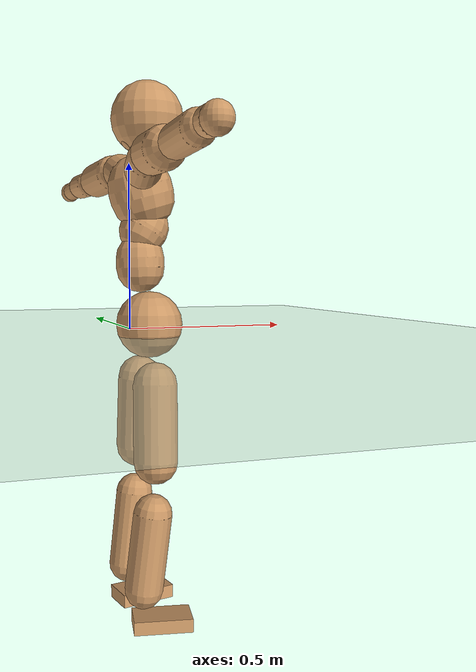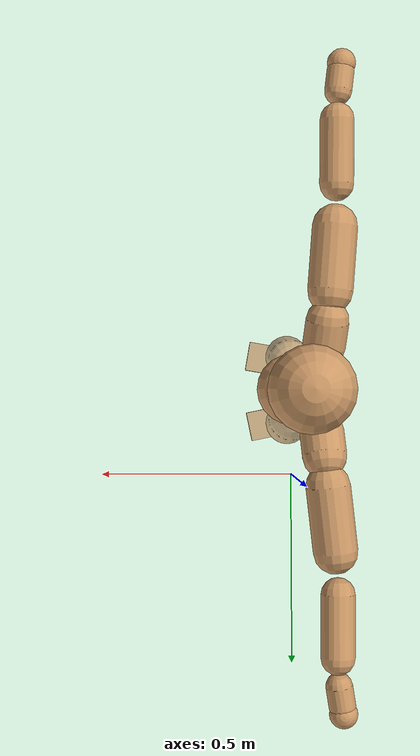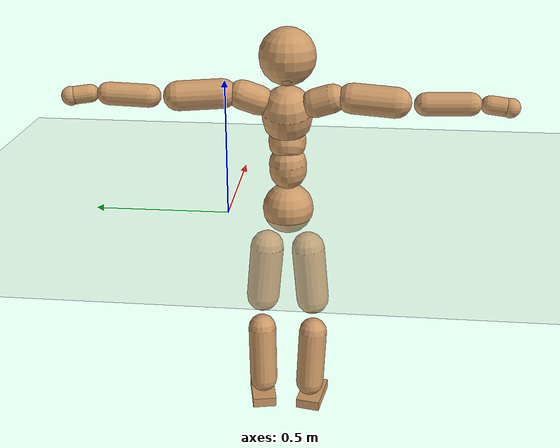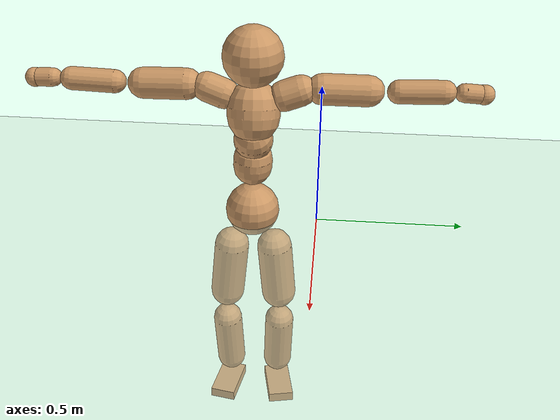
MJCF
<mujoco model="humanoid">
  <compiler coordinate="local"/>
  <default>
    <joint damping="0.0" armature="0.01" stiffness="0.0" limited="true"/>
    <geom conaffinity="1" condim="3" contype="7" margin="0.001" rgba="0.8 0.6 .4 1"/>
  </default>
  <asset>
    <texture type="skybox" builtin="gradient" rgb1=".4 .5 .6" rgb2="0 0 0" width="100" height="100"/>
    <texture builtin="flat" height="1278" mark="cross" markrgb="1 1 1" name="texgeom" random="0.01" rgb1="0.8 0.6 0.4" rgb2="0.8 0.6 0.4" type="cube" width="127"/>
    <texture builtin="checker" height="100" name="texplane" rgb1="0 0 0" rgb2="0.8 0.8 0.8" type="2d" width="100"/>
    <material name="MatPlane" reflectance="0.5" shininess="1" specular="1" texrepeat="60 60" texture="texplane"/>
    <material name="geom" texture="texgeom" texuniform="true"/>
  </asset>
  <worldbody>
    <light cutoff="100" diffuse="1 1 1" dir="-0 0 -1.3" directional="true" exponent="1" pos="0 0 1.3" specular=".1 .1 .1"/>
    <geom conaffinity="1" condim="3" name="floor" pos="0 0 0" rgba="0.8 0.9 0.8 1" size="100 100 .2" type="plane" material="MatPlane"/>
    <body name="Pelvis" pos="-0.0019 -0.2237 0.0304">
      <freejoint name="Pelvis"/>
      <geom type="sphere" contype="1" conaffinity="1" density="500" size="0.0930" pos="0.0000 0.0000 0.0000" name="Pelvis"/>
      <body name="L_Hip" pos="-0.0069 0.0719 -0.0888">
        <joint name="L_Hip_x" type="hinge" pos="0 0 0" axis="1 0 0" stiffness="800" damping="80" armature="0.02" range="-180.0000 180.0000"/>
        <joint name="L_Hip_y" type="hinge" pos="0 0 0" axis="0 1 0" stiffness="800" damping="80" armature="0.02" range="-180.0000 180.0000"/>
        <joint name="L_Hip_z" type="hinge" pos="0 0 0" axis="0 0 1" stiffness="800" damping="80" armature="0.02" range="-180.0000 180.0000"/>
        <geom type="capsule" contype="1" conaffinity="1" density="500" fromto="-0.0011 0.0057 -0.0693 -0.0043 0.0230 -0.2773" size="0.0619" name="L_Hip"/>
        <body name="L_Knee" pos="-0.0054 0.0287 -0.3466">
          <joint name="L_Knee_x" type="hinge" pos="0 0 0" axis="1 0 0" stiffness="800" damping="80" armature="0.02" range="-180.0000 180.0000"/>
          <joint name="L_Knee_y" type="hinge" pos="0 0 0" axis="0 1 0" stiffness="800" damping="80" armature="0.02" range="-180.0000 180.0000"/>
          <joint name="L_Knee_z" type="hinge" pos="0 0 0" axis="0 0 1" stiffness="800" damping="80" armature="0.02" range="-180.0000 180.0000"/>
          <geom type="capsule" contype="1" conaffinity="1" density="500" fromto="-0.0086 -0.0023 -0.0730 -0.0342 -0.0093 -0.2918" size="0.0535" name="L_Knee"/>
          <body name="L_Ankle" pos="-0.0428 -0.0116 -0.3648">
            <joint name="L_Ankle_x" type="hinge" pos="0 0 0" axis="1 0 0" stiffness="800" damping="80" armature="0.02" range="-180.0000 180.0000"/>
            <joint name="L_Ankle_y" type="hinge" pos="0 0 0" axis="0 1 0" stiffness="800" damping="80" armature="0.02" range="-180.0000 180.0000"/>
            <joint name="L_Ankle_z" type="hinge" pos="0 0 0" axis="0 0 1" stiffness="800" damping="80" armature="0.02" range="-180.0000 180.0000"/>
            <geom type="box" contype="1" conaffinity="1" density="500" pos="0.0568 0.0116 -0.0265" size="0.0819 0.0464 0.0194" quat="0.9949 0.0000 0.0000 0.1006" name="L_Ankle"/>
            <body name="L_Toe" pos="0.1136 0.0232 -0.053">
              <joint name="L_Toe_x" type="hinge" pos="0 0 0" axis="1 0 0" stiffness="500" damping="50" armature="0.02" range="-180.0000 180.0000"/>
              <joint name="L_Toe_y" type="hinge" pos="0 0 0" axis="0 1 0" stiffness="500" damping="50" armature="0.02" range="-180.0000 180.0000"/>
              <joint name="L_Toe_z" type="hinge" pos="0 0 0" axis="0 0 1" stiffness="500" damping="50" armature="0.02" range="-180.0000 180.0000"/>
              <geom type="box" contype="1" conaffinity="1" density="500" pos="0.0000 0.0000 0.0261" size="0.001 0.0023 0.001" quat="0.9942 0.0000 0.0000 0.1072" name="L_Toe"/>
            </body>
          </body>
        </body>
      </body>
      <body name="R_Hip" pos="-0.0042 -0.0694 -0.0881">
        <joint name="R_Hip_x" type="hinge" pos="0 0 0" axis="1 0 0" stiffness="800" damping="80" armature="0.02" range="-180.0000 180.0000"/>
        <joint name="R_Hip_y" type="hinge" pos="0 0 0" axis="0 1 0" stiffness="800" damping="80" armature="0.02" range="-180.0000 180.0000"/>
        <joint name="R_Hip_z" type="hinge" pos="0 0 0" axis="0 0 1" stiffness="800" damping="80" armature="0.02" range="-180.0000 180.0000"/>
        <geom type="capsule" contype="1" conaffinity="1" density="500" fromto="-0.0016 -0.0068 -0.0707 -0.0066 -0.0273 -0.2828" size="0.0612" name="R_Hip"/>
        <body name="R_Knee" pos="-0.0082 -0.0341 -0.3535">
          <joint name="R_Knee_x" type="hinge" pos="0 0 0" axis="1 0 0" stiffness="800" damping="80" armature="0.02" range="-180.0000 180.0000"/>
          <joint name="R_Knee_y" type="hinge" pos="0 0 0" axis="0 1 0" stiffness="800" damping="80" armature="0.02" range="-180.0000 180.0000"/>
          <joint name="R_Knee_z" type="hinge" pos="0 0 0" axis="0 0 1" stiffness="800" damping="80" armature="0.02" range="-180.0000 180.0000"/>
          <geom type="capsule" contype="1" conaffinity="1" density="500" fromto="-0.0083 0.0027 -0.0728 -0.0330 0.0106 -0.2914" size="0.0537" name="R_Knee"/>
          <body name="R_Ankle" pos="-0.0413 0.0133 -0.3642">
            <joint name="R_Ankle_x" type="hinge" pos="0 0 0" axis="1 0 0" stiffness="800" damping="80" armature="0.02" range="-180.0000 180.0000"/>
            <joint name="R_Ankle_y" type="hinge" pos="0 0 0" axis="0 1 0" stiffness="800" damping="80" armature="0.02" range="-180.0000 180.0000"/>
            <joint name="R_Ankle_z" type="hinge" pos="0 0 0" axis="0 0 1" stiffness="800" damping="80" armature="0.02" range="-180.0000 180.0000"/>
            <geom type="box" contype="1" conaffinity="1" density="500" pos="0.0586 -0.0104 -0.0224" size="0.0823 0.0464 0.0192" quat="0.9961 0.0000 0.0000 -0.0877" name="R_Ankle"/>
            <body name="R_Toe" pos="0.1171 -0.0208 -0.0448">
              <joint name="R_Toe_x" type="hinge" pos="0 0 0" axis="1 0 0" stiffness="500" damping="50" armature="0.02" range="-180.0000 180.0000"/>
              <joint name="R_Toe_y" type="hinge" pos="0 0 0" axis="0 1 0" stiffness="500" damping="50" armature="0.02" range="-180.0000 180.0000"/>
              <joint name="R_Toe_z" type="hinge" pos="0 0 0" axis="0 0 1" stiffness="500" damping="50" armature="0.02" range="-180.0000 180.0000"/>
              <geom type="box" contype="1" conaffinity="1" density="500" pos="0.0000 0.0000 0.0248" size="0.0009 0.0023 0.0011" quat="0.9969 0.0000 0.0000 -0.0781" name="R_Toe"/>
            </body>
          </body>
        </body>
      </body>
      <body name="Torso" pos="-0.0241 -0.0032 0.1036">
        <joint name="Torso_x" type="hinge" pos="0 0 0" axis="1 0 0" stiffness="1000" damping="100" armature="0.02" range="-180.0000 180.0000"/>
        <joint name="Torso_y" type="hinge" pos="0 0 0" axis="0 1 0" stiffness="1000" damping="100" armature="0.02" range="-180.0000 180.0000"/>
        <joint name="Torso_z" type="hinge" pos="0 0 0" axis="0 0 1" stiffness="1000" damping="100" armature="0.02" range="-180.0000 180.0000"/>
        <geom type="capsule" contype="1" conaffinity="1" density="500" fromto="-0.0021 0.0028 0.0810 -0.0014 0.0018 0.0540" size="0.066867" name="Torso"/>
        <body name="Spine" pos="-0.0035 0.0046 0.135">
          <joint name="Spine_x" type="hinge" pos="0 0 0" axis="1 0 0" stiffness="1000" damping="100" armature="0.02" range="-180.0000 180.0000"/>
          <joint name="Spine_y" type="hinge" pos="0 0 0" axis="0 1 0" stiffness="1000" damping="100" armature="0.02" range="-180.0000 180.0000"/>
          <joint name="Spine_z" type="hinge" pos="0 0 0" axis="0 0 1" stiffness="1000" damping="100" armature="0.02" range="-180.0000 180.0000"/>
          <geom type="capsule" contype="1" conaffinity="1" density="500" fromto="0.0169 0.0013 0.0301 0.0113 0.0009 0.0201" size="0.066402" name="Spine"/>
          <body name="Chest" pos="0.0282 0.0022 0.0502">
            <joint name="Chest_x" type="hinge" pos="0 0 0" axis="1 0 0" stiffness="1000" damping="100" armature="0.02" range="-180.0000 180.0000"/>
            <joint name="Chest_y" type="hinge" pos="0 0 0" axis="0 1 0" stiffness="1000" damping="100" armature="0.02" range="-180.0000 180.0000"/>
            <joint name="Chest_z" type="hinge" pos="0 0 0" axis="0 0 1" stiffness="1000" damping="100" armature="0.02" range="-180.0000 180.0000"/>
            <geom type="capsule" contype="1" conaffinity="1" density="500" fromto="-0.0256 -0.0007 0.0894 -0.0171 -0.0004 0.0596" size="0.088257" name="Chest"/>
            <body name="Neck" pos="-0.0515 -0.002 0.2107">
              <joint name="Neck_x" type="hinge" pos="0 0 0" axis="1 0 0" stiffness="500" damping="50" armature="0.02" range="-180.0000 180.0000"/>
              <joint name="Neck_y" type="hinge" pos="0 0 0" axis="0 1 0" stiffness="500" damping="50" armature="0.02" range="-180.0000 180.0000"/>
              <joint name="Neck_z" type="hinge" pos="0 0 0" axis="0 0 1" stiffness="500" damping="50" armature="0.02" range="-180.0000 180.0000"/>
              <geom type="capsule" contype="1" conaffinity="1" density="500" fromto="0.0096 0.0005 0.0124 0.0383 0.0020 0.0496" size="0.038781" name="Neck"/>
              <body name="Head" pos="0.0479 0.0026 0.0619">
                <joint name="Head_x" type="hinge" pos="0 0 0" axis="1 0 0" stiffness="500" damping="50" armature="0.02" range="-180.0000 180.0000"/>
                <joint name="Head_y" type="hinge" pos="0 0 0" axis="0 1 0" stiffness="500" damping="50" armature="0.02" range="-180.0000 180.0000"/>
                <joint name="Head_z" type="hinge" pos="0 0 0" axis="0 0 1" stiffness="500" damping="50" armature="0.02" range="-180.0000 180.0000"/>
                <geom type="sphere" contype="1" conaffinity="1" density="500" size="0.0994" pos="0.0000 0.0000 0.0000" name="Head"/>
              </body>
            </body>
            <body name="L_Thorax" pos="-0.0356 0.0783 0.1196">
              <joint name="L_Thorax_x" type="hinge" pos="0 0 0" axis="1 0 0" stiffness="500" damping="50" armature="0.02" range="-180.0000 180.0000"/>
              <joint name="L_Thorax_y" type="hinge" pos="0 0 0" axis="0 1 0" stiffness="500" damping="50" armature="0.02" range="-180.0000 180.0000"/>
              <joint name="L_Thorax_z" type="hinge" pos="0 0 0" axis="0 0 1" stiffness="500" damping="50" armature="0.02" range="-180.0000 180.0000"/>
              <geom type="capsule" contype="1" conaffinity="1" density="500" fromto="-0.0015 0.0183 0.0066 -0.0061 0.0734 0.0262" size="0.0513" name="L_Thorax"/>
              <body name="L_Shoulder" pos="-0.0077 0.0917 0.0328">
                <joint name="L_Shoulder_x" type="hinge" pos="0 0 0" axis="1 0 0" stiffness="500" damping="50" armature="0.02" range="-720.0000 720.0000"/>
                <joint name="L_Shoulder_y" type="hinge" pos="0 0 0" axis="0 1 0" stiffness="500" damping="50" armature="0.02" range="-720.0000 720.0000"/>
                <joint name="L_Shoulder_z" type="hinge" pos="0 0 0" axis="0 0 1" stiffness="500" damping="50" armature="0.02" range="-720.0000 720.0000"/>
                <geom type="capsule" contype="1" conaffinity="1" density="500" fromto="-0.0057 0.0501 -0.0025 -0.0229 0.2005 -0.0102" size="0.0515" name="L_Shoulder"/>
                <body name="L_Elbow" pos="-0.0286 0.2506 -0.0127">
                  <joint name="L_Elbow_x" type="hinge" pos="0 0 0" axis="1 0 0" stiffness="500" damping="50" armature="0.02" range="-720.0000 720.0000"/>
                  <joint name="L_Elbow_y" type="hinge" pos="0 0 0" axis="0 1 0" stiffness="500" damping="50" armature="0.02" range="-720.0000 720.0000"/>
                  <joint name="L_Elbow_z" type="hinge" pos="0 0 0" axis="0 0 1" stiffness="500" damping="50" armature="0.02" range="-720.0000 720.0000"/>
                  <geom type="capsule" contype="1" conaffinity="1" density="500" fromto="0.0003 0.0479 0.0016 0.0011 0.1914 0.0063" size="0.0397" name="L_Elbow"/>
                  <body name="L_Wrist" pos="0.0014 0.2393 0.0078">
                    <joint name="L_Wrist_x" type="hinge" pos="0 0 0" axis="1 0 0" stiffness="300" damping="30" armature="0.02" range="-180.0000 180.0000"/>
                    <joint name="L_Wrist_y" type="hinge" pos="0 0 0" axis="0 1 0" stiffness="300" damping="30" armature="0.02" range="-180.0000 180.0000"/>
                    <joint name="L_Wrist_z" type="hinge" pos="0 0 0" axis="0 0 1" stiffness="300" damping="30" armature="0.02" range="-180.0000 180.0000"/>
                    <geom type="capsule" contype="1" conaffinity="1" density="500" fromto="-0.0027 0.0164 -0.0020 -0.0107 0.0658 -0.0080" size="0.0311" name="L_Wrist"/>
                    <body name="L_Hand" pos="-0.0134 0.0822 -0.01">
                      <joint name="L_Hand_x" type="hinge" pos="0 0 0" axis="1 0 0" stiffness="300" damping="30" armature="0.02" range="-180.0000 180.0000"/>
                      <joint name="L_Hand_y" type="hinge" pos="0 0 0" axis="0 1 0" stiffness="300" damping="30" armature="0.02" range="-180.0000 180.0000"/>
                      <joint name="L_Hand_z" type="hinge" pos="0 0 0" axis="0 0 1" stiffness="300" damping="30" armature="0.02" range="-180.0000 180.0000"/>
                      <geom type="sphere" contype="1" conaffinity="1" density="500" size="0.0332" pos="0.0000 0.0000 0.0000" name="L_Hand"/>
                    </body>
                  </body>
                </body>
              </body>
            </body>
            <body name="R_Thorax" pos="-0.0408 -0.0796 0.1167">
              <joint name="R_Thorax_x" type="hinge" pos="0 0 0" axis="1 0 0" stiffness="500" damping="50" armature="0.02" range="-180.0000 180.0000"/>
              <joint name="R_Thorax_y" type="hinge" pos="0 0 0" axis="0 1 0" stiffness="500" damping="50" armature="0.02" range="-180.0000 180.0000"/>
              <joint name="R_Thorax_z" type="hinge" pos="0 0 0" axis="0 0 1" stiffness="500" damping="50" armature="0.02" range="-180.0000 180.0000"/>
              <geom type="capsule" contype="1" conaffinity="1" density="500" fromto="-0.0022 -0.0191 0.0065 -0.0088 -0.0764 0.0262" size="0.0499" name="R_Thorax"/>
              <body name="R_Shoulder" pos="-0.011 -0.0955 0.0327">
                <joint name="R_Shoulder_x" type="hinge" pos="0 0 0" axis="1 0 0" stiffness="500" damping="50" armature="0.02" range="-720.0000 720.0000"/>
                <joint name="R_Shoulder_y" type="hinge" pos="0 0 0" axis="0 1 0" stiffness="500" damping="50" armature="0.02" range="-720.0000 720.0000"/>
                <joint name="R_Shoulder_z" type="hinge" pos="0 0 0" axis="0 0 1" stiffness="500" damping="50" armature="0.02" range="-720.0000 720.0000"/>
                <geom type="capsule" contype="1" conaffinity="1" density="500" fromto="-0.0040 -0.0491 -0.0025 -0.0159 -0.1964 -0.0099" size="0.0524" name="R_Shoulder"/>
                <body name="R_Elbow" pos="-0.0199 -0.2454 -0.0124">
                  <joint name="R_Elbow_x" type="hinge" pos="0 0 0" axis="1 0 0" stiffness="500" damping="50" armature="0.02" range="-720.0000 720.0000"/>
                  <joint name="R_Elbow_y" type="hinge" pos="0 0 0" axis="0 1 0" stiffness="500" damping="50" armature="0.02" range="-720.0000 720.0000"/>
                  <joint name="R_Elbow_z" type="hinge" pos="0 0 0" axis="0 0 1" stiffness="500" damping="50" armature="0.02" range="-720.0000 720.0000"/>
                  <geom type="capsule" contype="1" conaffinity="1" density="500" fromto="-0.0004 -0.0486 0.0015 -0.0016 -0.1943 0.0061" size="0.0394" name="R_Elbow"/>
                  <body name="R_Wrist" pos="-0.002 -0.2429 0.0076">
                    <joint name="R_Wrist_x" type="hinge" pos="0 0 0" axis="1 0 0" stiffness="300" damping="30" armature="0.02" range="-180.0000 180.0000"/>
                    <joint name="R_Wrist_y" type="hinge" pos="0 0 0" axis="0 1 0" stiffness="300" damping="30" armature="0.02" range="-180.0000 180.0000"/>
                    <joint name="R_Wrist_z" type="hinge" pos="0 0 0" axis="0 0 1" stiffness="300" damping="30" armature="0.02" range="-180.0000 180.0000"/>
                    <geom type="capsule" contype="1" conaffinity="1" density="500" fromto="-0.0021 -0.0164 -0.0015 -0.0084 -0.0655 -0.0059" size="0.0314" name="R_Wrist"/>
                    <body name="R_Hand" pos="-0.0105 -0.0819 -0.0074">
                      <joint name="R_Hand_x" type="hinge" pos="0 0 0" axis="1 0 0" stiffness="300" damping="30" armature="0.02" range="-180.0000 180.0000"/>
                      <joint name="R_Hand_y" type="hinge" pos="0 0 0" axis="0 1 0" stiffness="300" damping="30" armature="0.02" range="-180.0000 180.0000"/>
                      <joint name="R_Hand_z" type="hinge" pos="0 0 0" axis="0 0 1" stiffness="300" damping="30" armature="0.02" range="-180.0000 180.0000"/>
                      <geom type="sphere" contype="1" conaffinity="1" density="500" size="0.0329" pos="0.0000 0.0000 0.0000" name="R_Hand"/>
                    </body>
                  </body>
                </body>
              </body>
            </body>
          </body>
        </body>
      </body>
    </body>
  </worldbody>
  <actuator>
    <motor name="L_Hip_x" joint="L_Hip_x" gear="500"/>
    <motor name="L_Hip_y" joint="L_Hip_y" gear="500"/>
    <motor name="L_Hip_z" joint="L_Hip_z" gear="500"/>
    <motor name="L_Knee_x" joint="L_Knee_x" gear="500"/>
    <motor name="L_Knee_y" joint="L_Knee_y" gear="500"/>
    <motor name="L_Knee_z" joint="L_Knee_z" gear="500"/>
    <motor name="L_Ankle_x" joint="L_Ankle_x" gear="500"/>
    <motor name="L_Ankle_y" joint="L_Ankle_y" gear="500"/>
    <motor name="L_Ankle_z" joint="L_Ankle_z" gear="500"/>
    <motor name="L_Toe_x" joint="L_Toe_x" gear="500"/>
    <motor name="L_Toe_y" joint="L_Toe_y" gear="500"/>
    <motor name="L_Toe_z" joint="L_Toe_z" gear="500"/>
    <motor name="R_Hip_x" joint="R_Hip_x" gear="500"/>
    <motor name="R_Hip_y" joint="R_Hip_y" gear="500"/>
    <motor name="R_Hip_z" joint="R_Hip_z" gear="500"/>
    <motor name="R_Knee_x" joint="R_Knee_x" gear="500"/>
    <motor name="R_Knee_y" joint="R_Knee_y" gear="500"/>
    <motor name="R_Knee_z" joint="R_Knee_z" gear="500"/>
    <motor name="R_Ankle_x" joint="R_Ankle_x" gear="500"/>
    <motor name="R_Ankle_y" joint="R_Ankle_y" gear="500"/>
    <motor name="R_Ankle_z" joint="R_Ankle_z" gear="500"/>
    <motor name="R_Toe_x" joint="R_Toe_x" gear="500"/>
    <motor name="R_Toe_y" joint="R_Toe_y" gear="500"/>
    <motor name="R_Toe_z" joint="R_Toe_z" gear="500"/>
    <motor name="Torso_x" joint="Torso_x" gear="500"/>
    <motor name="Torso_y" joint="Torso_y" gear="500"/>
    <motor name="Torso_z" joint="Torso_z" gear="500"/>
    <motor name="Spine_x" joint="Spine_x" gear="500"/>
    <motor name="Spine_y" joint="Spine_y" gear="500"/>
    <motor name="Spine_z" joint="Spine_z" gear="500"/>
    <motor name="Chest_x" joint="Chest_x" gear="500"/>
    <motor name="Chest_y" joint="Chest_y" gear="500"/>
    <motor name="Chest_z" joint="Chest_z" gear="500"/>
    <motor name="Neck_x" joint="Neck_x" gear="500"/>
    <motor name="Neck_y" joint="Neck_y" gear="500"/>
    <motor name="Neck_z" joint="Neck_z" gear="500"/>
    <motor name="Head_x" joint="Head_x" gear="500"/>
    <motor name="Head_y" joint="Head_y" gear="500"/>
    <motor name="Head_z" joint="Head_z" gear="500"/>
    <motor name="L_Thorax_x" joint="L_Thorax_x" gear="500"/>
    <motor name="L_Thorax_y" joint="L_Thorax_y" gear="500"/>
    <motor name="L_Thorax_z" joint="L_Thorax_z" gear="500"/>
    <motor name="L_Shoulder_x" joint="L_Shoulder_x" gear="500"/>
    <motor name="L_Shoulder_y" joint="L_Shoulder_y" gear="500"/>
    <motor name="L_Shoulder_z" joint="L_Shoulder_z" gear="500"/>
    <motor name="L_Elbow_x" joint="L_Elbow_x" gear="500"/>
    <motor name="L_Elbow_y" joint="L_Elbow_y" gear="500"/>
    <motor name="L_Elbow_z" joint="L_Elbow_z" gear="500"/>
    <motor name="L_Wrist_x" joint="L_Wrist_x" gear="500"/>
    <motor name="L_Wrist_y" joint="L_Wrist_y" gear="500"/>
    <motor name="L_Wrist_z" joint="L_Wrist_z" gear="500"/>
    <motor name="L_Hand_x" joint="L_Hand_x" gear="500"/>
    <motor name="L_Hand_y" joint="L_Hand_y" gear="500"/>
    <motor name="L_Hand_z" joint="L_Hand_z" gear="500"/>
    <motor name="R_Thorax_x" joint="R_Thorax_x" gear="500"/>
    <motor name="R_Thorax_y" joint="R_Thorax_y" gear="500"/>
    <motor name="R_Thorax_z" joint="R_Thorax_z" gear="500"/>
    <motor name="R_Shoulder_x" joint="R_Shoulder_x" gear="500"/>
    <motor name="R_Shoulder_y" joint="R_Shoulder_y" gear="500"/>
    <motor name="R_Shoulder_z" joint="R_Shoulder_z" gear="500"/>
    <motor name="R_Elbow_x" joint="R_Elbow_x" gear="500"/>
    <motor name="R_Elbow_y" joint="R_Elbow_y" gear="500"/>
    <motor name="R_Elbow_z" joint="R_Elbow_z" gear="500"/>
    <motor name="R_Wrist_x" joint="R_Wrist_x" gear="500"/>
    <motor name="R_Wrist_y" joint="R_Wrist_y" gear="500"/>
    <motor name="R_Wrist_z" joint="R_Wrist_z" gear="500"/>
    <motor name="R_Hand_x" joint="R_Hand_x" gear="500"/>
    <motor name="R_Hand_y" joint="R_Hand_y" gear="500"/>
    <motor name="R_Hand_z" joint="R_Hand_z" gear="500"/>
  </actuator>
  <contact>
    <exclude body1="Torso" body2="Chest"/>
    <exclude body1="Head" body2="Chest"/>
    <exclude body1="R_Knee" body2="R_Toe"/>
    <exclude body1="R_Knee" body2="L_Ankle"/>
    <exclude body1="R_Knee" body2="L_Toe"/>
    <exclude body1="L_Knee" body2="L_Toe"/>
    <exclude body1="L_Knee" body2="R_Ankle"/>
    <exclude body1="L_Knee" body2="R_Toe"/>
    <exclude body1="L_Shoulder" body2="Chest"/>
    <exclude body1="R_Shoulder" body2="Chest"/>
  </contact>
  <sensor/>
  <size njmax="700" nconmax="700"/>
</mujoco>
